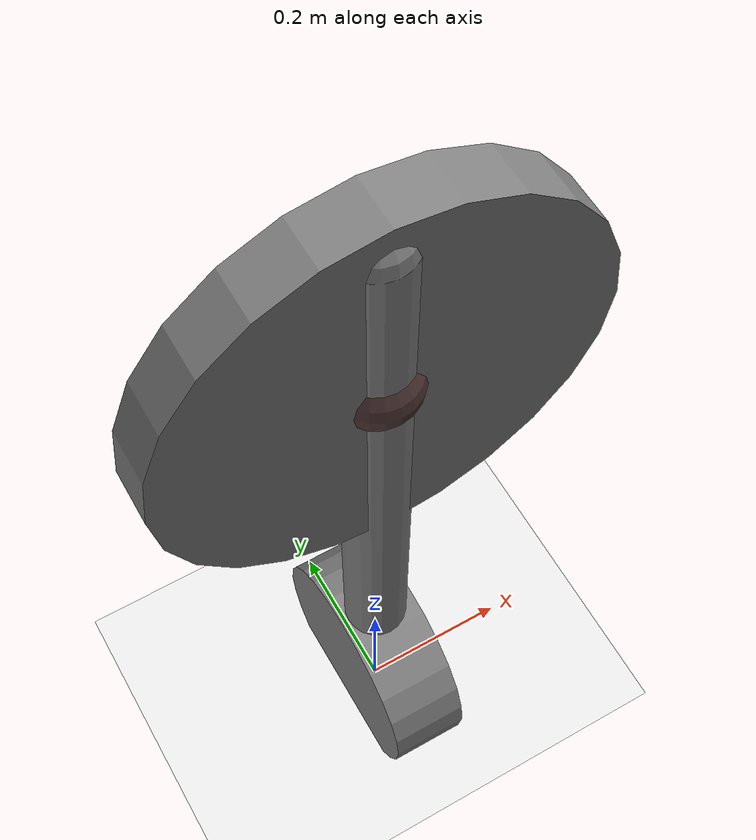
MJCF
<mujoco model="wheel_on_stick">
    <option timestep="0.001" gravity="0 0 -9.81"/>

    <visual>
        <map znear="0.001" zfar="50"/>
    </visual>

    <worldbody>

        <!-- Ground -->
        <geom type="plane" size="100 100 0.1" rgba="0.9 0.9 0.9 1" friction="2.0 0.02 0.001"/>

        <!-- Camera -->
        <camera name="side"
                pos="0 -4 1.5"
                quat="0.9239 0.3827 0 0"/>

        <!-- Base cart -->
        <body name="base" pos="0 0 0.10">

            <!-- Cart translation (horizontal X-axis) -->
            <joint name="base_wheel"
                   type="slide"
                   axis="1 0 0"
                   damping="0.1"
                   limited="true"
                   range="-5 5"/>

            <geom type="cylinder"
                  size="0.15 0.05"
                  mass="0.5"
                  quat="0.7071 0 0.7071 0"
                  friction="2.0 0.2 0.001"
                  solref="0.002 1"
                  solimp="0.9 0.95 0.001"/>

            <!-- Stick -->
            <body name="stick" pos="0 0 0.10">
                <joint name="stick_hinge"
                       type="hinge"
                       axis="0 1 0"
                       range="-3.14 3.14"
                       damping="2.0"
                       stiffness="0"/>

                <geom type="capsule"
                      fromto="0 0 0  0 0 0.8"
                      mass="1.0"
                      size="0.04"/>

                <!-- Reaction wheel -->
                <body name="wheel" pos="0 0 0.6">
                    <joint name="wheel_spin"
                           type="hinge"
                           axis="0 1 0"
                           damping="0.5"
                           limited="true"
                           range="-200 200"/>

                    <geom type="cylinder"
                          size="0.25 0.03"
                          mass="1.0"
                          quat="0.7071 0.7071 0 0"/>

                    <geom type="sphere"
                          size="0.05"
                          rgba="0.3 0.2 0.2 1"/>
                </body>
            </body>
        </body>
    </worldbody>

    <!-- Actuators -->
    <actuator>
        <!-- Reaction wheel motor -->
        <motor name="wheel_spin"
               joint="wheel_spin"
               ctrlrange="-2000 2000"
               gear="1"/>

        <!-- Base cart motor (force) -->
        <motor name="base_wheel"
               joint="base_wheel"
               ctrlrange="-100 100"
               gear="1"/>

        <!-- abstract base torque (rider steering) -->
        <motor name="stick_hinge"
               joint="stick_hinge"
               ctrlrange="-200 200"
               gear="1"/>
    </actuator>
</mujoco>
